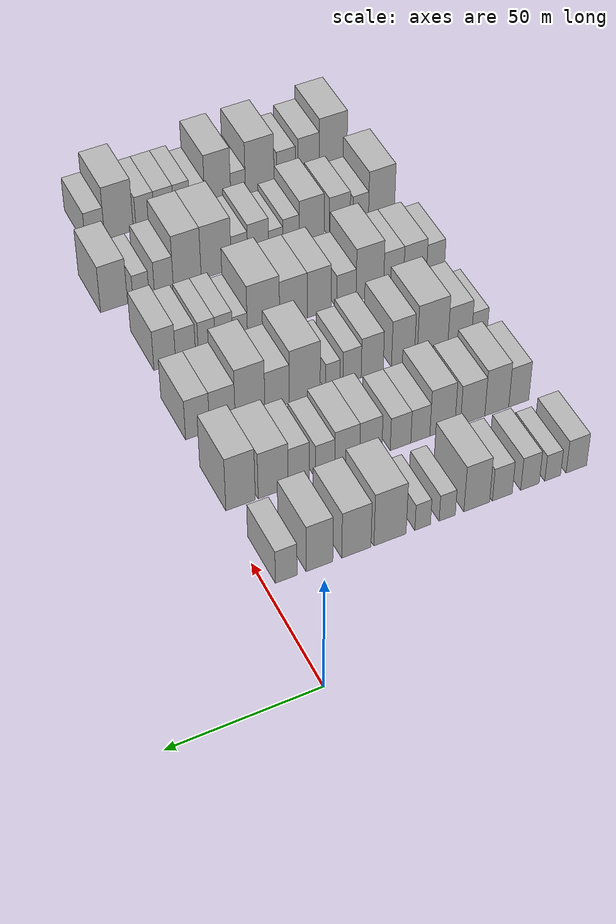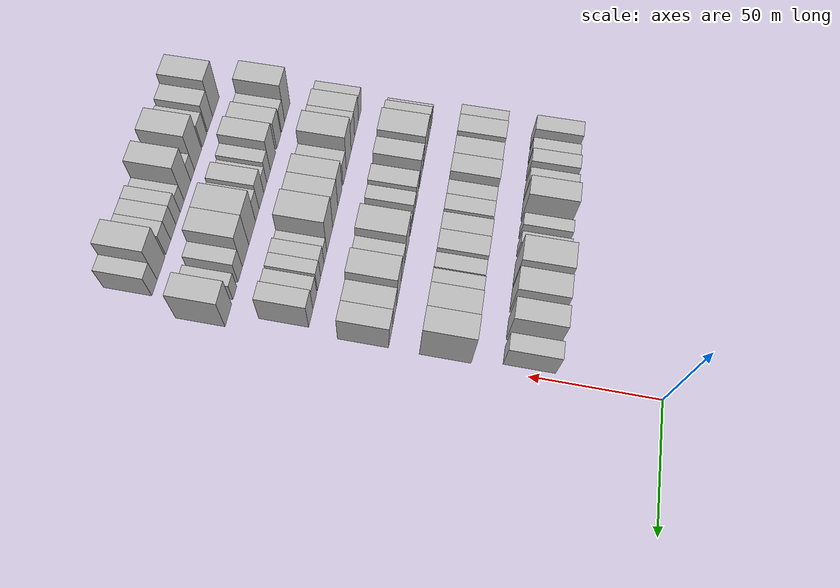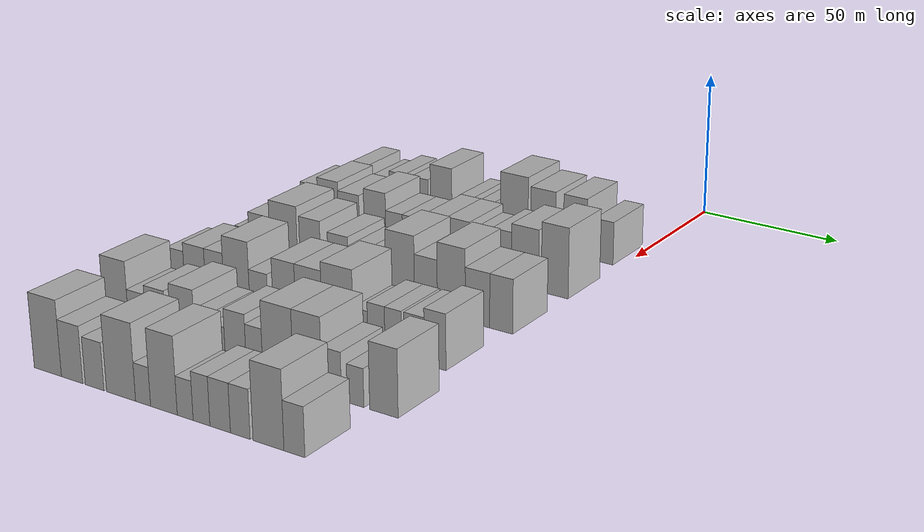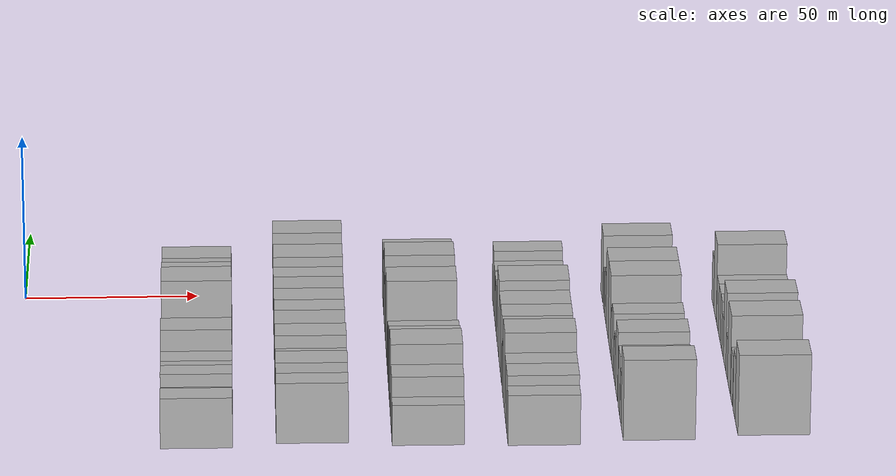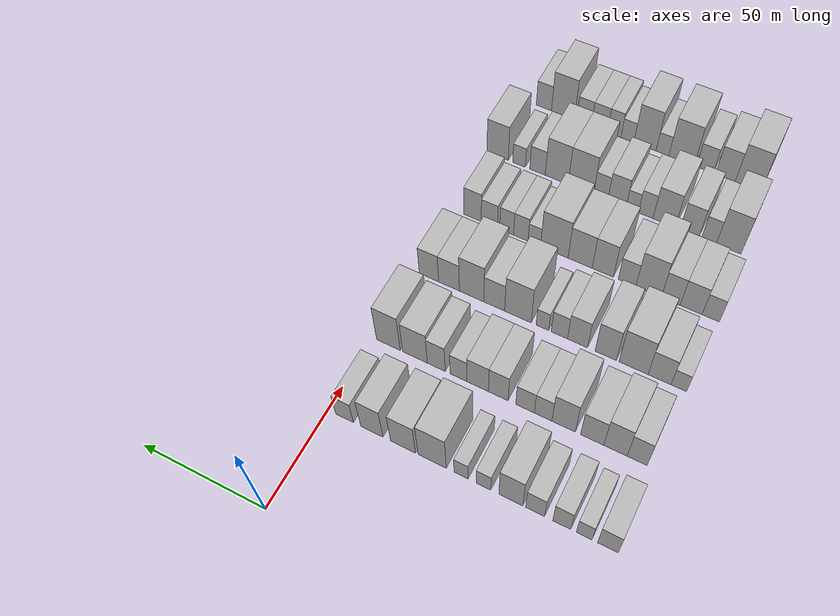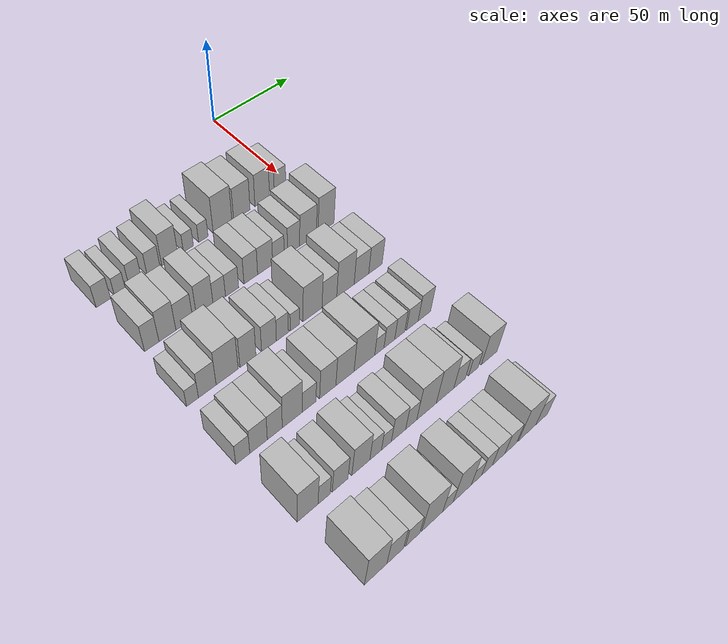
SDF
<sdf version="1.6">
 <world name="default">
  <model name="building_48">
   <static>1</static>
   <pose>50.0000 -106.9327 0 0.000000 0.000000 0.000000</pose>
   <link name="link">
    <pose>0 0 7.50 0 0 0</pose>
    <collision name="collision"><geometry><box><size>20.0000 7.3733 15.0000</size></box></geometry></collision>
    <visual name="visual">
     <cast_shadows>0</cast_shadows>
     <geometry><box><size>20.0000 7.3733 15.0000</size></box></geometry>
     <material>
      <script>
       <uri>model://HANNAS_wall/materials/scripts</uri>
       <uri>model://HANNAS_wall/materials/textures</uri>
       <name>vrc/HANNAS_wall</name>
      </script>
     </material>
    </visual>
   </link>
  </model>
  <model name="building_49">
   <static>1</static>
   <pose>50.0000 -98.4326 0 0.000000 0.000000 0.000000</pose>
   <link name="link">
    <pose>0 0 6.00 0 0 0</pose>
    <collision name="collision"><geometry><box><size>20.0000 5.6270 12.0000</size></box></geometry></collision>
    <visual name="visual">
     <cast_shadows>0</cast_shadows>
     <geometry><box><size>20.0000 5.6270 12.0000</size></box></geometry>
     <material>
      <script>
       <uri>model://HANNAS_wall/materials/scripts</uri>
       <uri>model://HANNAS_wall/materials/textures</uri>
       <name>vrc/HANNAS_wall</name>
      </script>
     </material>
    </visual>
   </link>
  </model>
  <model name="building_50">
   <static>1</static>
   <pose>50.0000 -90.3357 0 0.000000 0.000000 0.000000</pose>
   <link name="link">
    <pose>0 0 7.50 0 0 0</pose>
    <collision name="collision"><geometry><box><size>20.0000 6.5668 15.0000</size></box></geometry></collision>
    <visual name="visual">
     <cast_shadows>0</cast_shadows>
     <geometry><box><size>20.0000 6.5668 15.0000</size></box></geometry>
     <material>
      <script>
       <uri>model://HANNAS_wall/materials/scripts</uri>
       <uri>model://HANNAS_wall/materials/textures</uri>
       <name>vrc/HANNAS_wall</name>
      </script>
     </material>
    </visual>
   </link>
  </model>
  <model name="building_51">
   <static>1</static>
   <pose>50.0000 -80.5585 0 0.000000 0.000000 0.000000</pose>
   <link name="link">
    <pose>0 0 7.50 0 0 0</pose>
    <collision name="collision"><geometry><box><size>20.0000 6.9876 15.0000</size></box></geometry></collision>
    <visual name="visual">
     <cast_shadows>0</cast_shadows>
     <geometry><box><size>20.0000 6.9876 15.0000</size></box></geometry>
     <material>
      <script>
       <uri>model://HANNAS_wall/materials/scripts</uri>
       <uri>model://HANNAS_wall/materials/textures</uri>
       <name>vrc/HANNAS_wall</name>
      </script>
     </material>
    </visual>
   </link>
  </model>
  <model name="building_52">
   <static>1</static>
   <pose>50.0000 -71.5843 0 0.000000 0.000000 0.000000</pose>
   <link name="link">
    <pose>0 0 10.50 0 0 0</pose>
    <collision name="collision"><geometry><box><size>20.0000 8.9609 21.0000</size></box></geometry></collision>
    <visual name="visual">
     <cast_shadows>0</cast_shadows>
     <geometry><box><size>20.0000 8.9609 21.0000</size></box></geometry>
     <material>
      <script>
       <uri>model://HANNAS_wall/materials/scripts</uri>
       <uri>model://HANNAS_wall/materials/textures</uri>
       <name>vrc/HANNAS_wall</name>
      </script>
     </material>
    </visual>
   </link>
  </model>
  <model name="building_53">
   <static>1</static>
   <pose>50.0000 -61.3006 0 0.000000 0.000000 0.000000</pose>
   <link name="link">
    <pose>0 0 6.00 0 0 0</pose>
    <collision name="collision"><geometry><box><size>20.0000 5.6066 12.0000</size></box></geometry></collision>
    <visual name="visual">
     <cast_shadows>0</cast_shadows>
     <geometry><box><size>20.0000 5.6066 12.0000</size></box></geometry>
     <material>
      <script>
       <uri>model://HANNAS_wall/materials/scripts</uri>
       <uri>model://HANNAS_wall/materials/textures</uri>
       <name>vrc/HANNAS_wall</name>
      </script>
     </material>
    </visual>
   </link>
  </model>
  <model name="building_54">
   <static>1</static>
   <pose>50.0000 -52.8115 0 0.000000 0.000000 0.000000</pose>
   <link name="link">
    <pose>0 0 6.00 0 0 0</pose>
    <collision name="collision"><geometry><box><size>20.0000 5.3717 12.0000</size></box></geometry></collision>
    <visual name="visual">
     <cast_shadows>0</cast_shadows>
     <geometry><box><size>20.0000 5.3717 12.0000</size></box></geometry>
     <material>
      <script>
       <uri>model://HANNAS_wall/materials/scripts</uri>
       <uri>model://HANNAS_wall/materials/textures</uri>
       <name>vrc/HANNAS_wall</name>
      </script>
     </material>
    </visual>
   </link>
  </model>
  <model name="building_55">
   <static>1</static>
   <pose>50.0000 -41.6342 0 0.000000 0.000000 0.000000</pose>
   <link name="link">
    <pose>0 0 12.00 0 0 0</pose>
    <collision name="collision"><geometry><box><size>20.0000 10.9829 24.0000</size></box></geometry></collision>
    <visual name="visual">
     <cast_shadows>0</cast_shadows>
     <geometry><box><size>20.0000 10.9829 24.0000</size></box></geometry>
     <material>
      <script>
       <uri>model://HANNAS_wall/materials/scripts</uri>
       <uri>model://HANNAS_wall/materials/textures</uri>
       <name>vrc/HANNAS_wall</name>
      </script>
     </material>
    </visual>
   </link>
  </model>
  <model name="building_56">
   <static>1</static>
   <pose>50.0000 -30.2093 0 0.000000 0.000000 0.000000</pose>
   <link name="link">
    <pose>0 0 10.50 0 0 0</pose>
    <collision name="collision"><geometry><box><size>20.0000 9.8670 21.0000</size></box></geometry></collision>
    <visual name="visual">
     <cast_shadows>0</cast_shadows>
     <geometry><box><size>20.0000 9.8670 21.0000</size></box></geometry>
     <material>
      <script>
       <uri>model://HANNAS_wall/materials/scripts</uri>
       <uri>model://HANNAS_wall/materials/textures</uri>
       <name>vrc/HANNAS_wall</name>
      </script>
     </material>
    </visual>
   </link>
  </model>
  <model name="building_57">
   <static>1</static>
   <pose>50.0000 -17.8155 0 0.000000 0.000000 0.000000</pose>
   <link name="link">
    <pose>0 0 10.50 0 0 0</pose>
    <collision name="collision"><geometry><box><size>20.0000 8.9206 21.0000</size></box></geometry></collision>
    <visual name="visual">
     <cast_shadows>0</cast_shadows>
     <geometry><box><size>20.0000 8.9206 21.0000</size></box></geometry>
     <material>
      <script>
       <uri>model://HANNAS_wall/materials/scripts</uri>
       <uri>model://HANNAS_wall/materials/textures</uri>
       <name>vrc/HANNAS_wall</name>
      </script>
     </material>
    </visual>
   </link>
  </model>
  <model name="building_58">
   <static>1</static>
   <pose>50.0000 -6.7645 0 0.000000 0.000000 0.000000</pose>
   <link name="link">
    <pose>0 0 7.50 0 0 0</pose>
    <collision name="collision"><geometry><box><size>20.0000 7.1813 15.0000</size></box></geometry></collision>
    <visual name="visual">
     <cast_shadows>0</cast_shadows>
     <geometry><box><size>20.0000 7.1813 15.0000</size></box></geometry>
     <material>
      <script>
       <uri>model://HANNAS_wall/materials/scripts</uri>
       <uri>model://HANNAS_wall/materials/textures</uri>
       <name>vrc/HANNAS_wall</name>
      </script>
     </material>
    </visual>
   </link>
  </model>
  <model name="building_164">
   <static>1</static>
   <pose>82.0000 -104.2104 0 0.000000 0.000000 0.000000</pose>
   <link name="link">
    <pose>0 0 9.00 0 0 0</pose>
    <collision name="collision"><geometry><box><size>20.0000 7.3265 18.0000</size></box></geometry></collision>
    <visual name="visual">
     <cast_shadows>0</cast_shadows>
     <geometry><box><size>20.0000 7.3265 18.0000</size></box></geometry>
     <material>
      <script>
       <uri>model://HANNAS_wall/materials/scripts</uri>
       <uri>model://HANNAS_wall/materials/textures</uri>
       <name>vrc/HANNAS_wall</name>
      </script>
     </material>
    </visual>
   </link>
  </model>
  <model name="building_165">
   <static>1</static>
   <pose>82.0000 -96.1879 0 0.000000 0.000000 0.000000</pose>
   <link name="link">
    <pose>0 0 10.50 0 0 0</pose>
    <collision name="collision"><geometry><box><size>20.0000 8.7184 21.0000</size></box></geometry></collision>
    <visual name="visual">
     <cast_shadows>0</cast_shadows>
     <geometry><box><size>20.0000 8.7184 21.0000</size></box></geometry>
     <material>
      <script>
       <uri>model://HANNAS_wall/materials/scripts</uri>
       <uri>model://HANNAS_wall/materials/textures</uri>
       <name>vrc/HANNAS_wall</name>
      </script>
     </material>
    </visual>
   </link>
  </model>
  <model name="building_166">
   <static>1</static>
   <pose>82.0000 -87.4150 0 0.000000 0.000000 0.000000</pose>
   <link name="link">
    <pose>0 0 9.00 0 0 0</pose>
    <collision name="collision"><geometry><box><size>20.0000 8.8274 18.0000</size></box></geometry></collision>
    <visual name="visual">
     <cast_shadows>0</cast_shadows>
     <geometry><box><size>20.0000 8.8274 18.0000</size></box></geometry>
     <material>
      <script>
       <uri>model://HANNAS_wall/materials/scripts</uri>
       <uri>model://HANNAS_wall/materials/textures</uri>
       <name>vrc/HANNAS_wall</name>
      </script>
     </material>
    </visual>
   </link>
  </model>
  <model name="building_167">
   <static>1</static>
   <pose>82.0000 -76.5201 0 0.000000 0.000000 0.000000</pose>
   <link name="link">
    <pose>0 0 10.50 0 0 0</pose>
    <collision name="collision"><geometry><box><size>20.0000 8.9625 21.0000</size></box></geometry></collision>
    <visual name="visual">
     <cast_shadows>0</cast_shadows>
     <geometry><box><size>20.0000 8.9625 21.0000</size></box></geometry>
     <material>
      <script>
       <uri>model://HANNAS_wall/materials/scripts</uri>
       <uri>model://HANNAS_wall/materials/textures</uri>
       <name>vrc/HANNAS_wall</name>
      </script>
     </material>
    </visual>
   </link>
  </model>
  <model name="building_168">
   <static>1</static>
   <pose>82.0000 -68.6498 0 0.000000 0.000000 0.000000</pose>
   <link name="link">
    <pose>0 0 7.50 0 0 0</pose>
    <collision name="collision"><geometry><box><size>20.0000 6.7781 15.0000</size></box></geometry></collision>
    <visual name="visual">
     <cast_shadows>0</cast_shadows>
     <geometry><box><size>20.0000 6.7781 15.0000</size></box></geometry>
     <material>
      <script>
       <uri>model://HANNAS_wall/materials/scripts</uri>
       <uri>model://HANNAS_wall/materials/textures</uri>
       <name>vrc/HANNAS_wall</name>
      </script>
     </material>
    </visual>
   </link>
  </model>
  <model name="building_169">
   <static>1</static>
   <pose>82.0000 -61.6175 0 0.000000 0.000000 0.000000</pose>
   <link name="link">
    <pose>0 0 7.50 0 0 0</pose>
    <collision name="collision"><geometry><box><size>20.0000 7.2864 15.0000</size></box></geometry></collision>
    <visual name="visual">
     <cast_shadows>0</cast_shadows>
     <geometry><box><size>20.0000 7.2864 15.0000</size></box></geometry>
     <material>
      <script>
       <uri>model://HANNAS_wall/materials/scripts</uri>
       <uri>model://HANNAS_wall/materials/textures</uri>
       <name>vrc/HANNAS_wall</name>
      </script>
     </material>
    </visual>
   </link>
  </model>
  <model name="building_170">
   <static>1</static>
   <pose>82.0000 -51.0914 0 0.000000 0.000000 0.000000</pose>
   <link name="link">
    <pose>0 0 9.00 0 0 0</pose>
    <collision name="collision"><geometry><box><size>20.0000 7.7659 18.0000</size></box></geometry></collision>
    <visual name="visual">
     <cast_shadows>0</cast_shadows>
     <geometry><box><size>20.0000 7.7659 18.0000</size></box></geometry>
     <material>
      <script>
       <uri>model://HANNAS_wall/materials/scripts</uri>
       <uri>model://HANNAS_wall/materials/textures</uri>
       <name>vrc/HANNAS_wall</name>
      </script>
     </material>
    </visual>
   </link>
  </model>
  <model name="building_171">
   <static>1</static>
   <pose>82.0000 -42.8681 0 0.000000 0.000000 0.000000</pose>
   <link name="link">
    <pose>0 0 9.00 0 0 0</pose>
    <collision name="collision"><geometry><box><size>20.0000 8.6808 18.0000</size></box></geometry></collision>
    <visual name="visual">
     <cast_shadows>0</cast_shadows>
     <geometry><box><size>20.0000 8.6808 18.0000</size></box></geometry>
     <material>
      <script>
       <uri>model://HANNAS_wall/materials/scripts</uri>
       <uri>model://HANNAS_wall/materials/textures</uri>
       <name>vrc/HANNAS_wall</name>
      </script>
     </material>
    </visual>
   </link>
  </model>
  <model name="building_172">
   <static>1</static>
   <pose>82.0000 -35.1683 0 0.000000 0.000000 0.000000</pose>
   <link name="link">
    <pose>0 0 7.50 0 0 0</pose>
    <collision name="collision"><geometry><box><size>20.0000 6.7187 15.0000</size></box></geometry></collision>
    <visual name="visual">
     <cast_shadows>0</cast_shadows>
     <geometry><box><size>20.0000 6.7187 15.0000</size></box></geometry>
     <material>
      <script>
       <uri>model://HANNAS_wall/materials/scripts</uri>
       <uri>model://HANNAS_wall/materials/textures</uri>
       <name>vrc/HANNAS_wall</name>
      </script>
     </material>
    </visual>
   </link>
  </model>
  <model name="building_173">
   <static>1</static>
   <pose>82.0000 -26.1395 0 0.000000 0.000000 0.000000</pose>
   <link name="link">
    <pose>0 0 9.00 0 0 0</pose>
    <collision name="collision"><geometry><box><size>20.0000 7.3390 18.0000</size></box></geometry></collision>
    <visual name="visual">
     <cast_shadows>0</cast_shadows>
     <geometry><box><size>20.0000 7.3390 18.0000</size></box></geometry>
     <material>
      <script>
       <uri>model://HANNAS_wall/materials/scripts</uri>
       <uri>model://HANNAS_wall/materials/textures</uri>
       <name>vrc/HANNAS_wall</name>
      </script>
     </material>
    </visual>
   </link>
  </model>
  <model name="building_174">
   <static>1</static>
   <pose>82.0000 -17.3554 0 0.000000 0.000000 0.000000</pose>
   <link name="link">
    <pose>0 0 10.50 0 0 0</pose>
    <collision name="collision"><geometry><box><size>20.0000 10.2293 21.0000</size></box></geometry></collision>
    <visual name="visual">
     <cast_shadows>0</cast_shadows>
     <geometry><box><size>20.0000 10.2293 21.0000</size></box></geometry>
     <material>
      <script>
       <uri>model://HANNAS_wall/materials/scripts</uri>
       <uri>model://HANNAS_wall/materials/textures</uri>
       <name>vrc/HANNAS_wall</name>
      </script>
     </material>
    </visual>
   </link>
  </model>
  <model name="building_175">
   <static>1</static>
   <pose>82.0000 -6.2655 0 0.000000 0.000000 0.000000</pose>
   <link name="link">
    <pose>0 0 12.00 0 0 0</pose>
    <collision name="collision"><geometry><box><size>20.0000 9.9505 24.0000</size></box></geometry></collision>
    <visual name="visual">
     <cast_shadows>0</cast_shadows>
     <geometry><box><size>20.0000 9.9505 24.0000</size></box></geometry>
     <material>
      <script>
       <uri>model://HANNAS_wall/materials/scripts</uri>
       <uri>model://HANNAS_wall/materials/textures</uri>
       <name>vrc/HANNAS_wall</name>
      </script>
     </material>
    </visual>
   </link>
  </model>
  <model name="building_286">
   <static>1</static>
   <pose>114.0000 -107.2323 0 0.000000 0.000000 0.000000</pose>
   <link name="link">
    <pose>0 0 6.00 0 0 0</pose>
    <collision name="collision"><geometry><box><size>20.0000 5.8967 12.0000</size></box></geometry></collision>
    <visual name="visual">
     <cast_shadows>0</cast_shadows>
     <geometry><box><size>20.0000 5.8967 12.0000</size></box></geometry>
     <material>
      <script>
       <uri>model://HANNAS_wall/materials/scripts</uri>
       <uri>model://HANNAS_wall/materials/textures</uri>
       <name>vrc/HANNAS_wall</name>
      </script>
     </material>
    </visual>
   </link>
  </model>
  <model name="building_287">
   <static>1</static>
   <pose>114.0000 -99.8541 0 0.000000 0.000000 0.000000</pose>
   <link name="link">
    <pose>0 0 9.00 0 0 0</pose>
    <collision name="collision"><geometry><box><size>20.0000 8.8598 18.0000</size></box></geometry></collision>
    <visual name="visual">
     <cast_shadows>0</cast_shadows>
     <geometry><box><size>20.0000 8.8598 18.0000</size></box></geometry>
     <material>
      <script>
       <uri>model://HANNAS_wall/materials/scripts</uri>
       <uri>model://HANNAS_wall/materials/textures</uri>
       <name>vrc/HANNAS_wall</name>
      </script>
     </material>
    </visual>
   </link>
  </model>
  <model name="building_288">
   <static>1</static>
   <pose>114.0000 -89.7545 0 0.000000 0.000000 0.000000</pose>
   <link name="link">
    <pose>0 0 12.00 0 0 0</pose>
    <collision name="collision"><geometry><box><size>20.0000 11.3393 24.0000</size></box></geometry></collision>
    <visual name="visual">
     <cast_shadows>0</cast_shadows>
     <geometry><box><size>20.0000 11.3393 24.0000</size></box></geometry>
     <material>
      <script>
       <uri>model://HANNAS_wall/materials/scripts</uri>
       <uri>model://HANNAS_wall/materials/textures</uri>
       <name>vrc/HANNAS_wall</name>
      </script>
     </material>
    </visual>
   </link>
  </model>
  <model name="building_289">
   <static>1</static>
   <pose>114.0000 -78.8769 0 0.000000 0.000000 0.000000</pose>
   <link name="link">
    <pose>0 0 10.50 0 0 0</pose>
    <collision name="collision"><geometry><box><size>20.0000 8.4158 21.0000</size></box></geometry></collision>
    <visual name="visual">
     <cast_shadows>0</cast_shadows>
     <geometry><box><size>20.0000 8.4158 21.0000</size></box></geometry>
     <material>
      <script>
       <uri>model://HANNAS_wall/materials/scripts</uri>
       <uri>model://HANNAS_wall/materials/textures</uri>
       <name>vrc/HANNAS_wall</name>
      </script>
     </material>
    </visual>
   </link>
  </model>
  <model name="building_290">
   <static>1</static>
   <pose>114.0000 -67.6635 0 0.000000 0.000000 0.000000</pose>
   <link name="link">
    <pose>0 0 9.00 0 0 0</pose>
    <collision name="collision"><geometry><box><size>20.0000 8.0111 18.0000</size></box></geometry></collision>
    <visual name="visual">
     <cast_shadows>0</cast_shadows>
     <geometry><box><size>20.0000 8.0111 18.0000</size></box></geometry>
     <material>
      <script>
       <uri>model://HANNAS_wall/materials/scripts</uri>
       <uri>model://HANNAS_wall/materials/textures</uri>
       <name>vrc/HANNAS_wall</name>
      </script>
     </material>
    </visual>
   </link>
  </model>
  <model name="building_291">
   <static>1</static>
   <pose>114.0000 -60.3493 0 0.000000 0.000000 0.000000</pose>
   <link name="link">
    <pose>0 0 7.50 0 0 0</pose>
    <collision name="collision"><geometry><box><size>20.0000 6.6172 15.0000</size></box></geometry></collision>
    <visual name="visual">
     <cast_shadows>0</cast_shadows>
     <geometry><box><size>20.0000 6.6172 15.0000</size></box></geometry>
     <material>
      <script>
       <uri>model://HANNAS_wall/materials/scripts</uri>
       <uri>model://HANNAS_wall/materials/textures</uri>
       <name>vrc/HANNAS_wall</name>
      </script>
     </material>
    </visual>
   </link>
  </model>
  <model name="building_292">
   <static>1</static>
   <pose>114.0000 -53.4768 0 0.000000 0.000000 0.000000</pose>
   <link name="link">
    <pose>0 0 6.00 0 0 0</pose>
    <collision name="collision"><geometry><box><size>20.0000 5.1278 12.0000</size></box></geometry></collision>
    <visual name="visual">
     <cast_shadows>0</cast_shadows>
     <geometry><box><size>20.0000 5.1278 12.0000</size></box></geometry>
     <material>
      <script>
       <uri>model://HANNAS_wall/materials/scripts</uri>
       <uri>model://HANNAS_wall/materials/textures</uri>
       <name>vrc/HANNAS_wall</name>
      </script>
     </material>
    </visual>
   </link>
  </model>
  <model name="building_293">
   <static>1</static>
   <pose>114.0000 -43.4292 0 0.000000 0.000000 0.000000</pose>
   <link name="link">
    <pose>0 0 12.00 0 0 0</pose>
    <collision name="collision"><geometry><box><size>20.0000 10.9676 24.0000</size></box></geometry></collision>
    <visual name="visual">
     <cast_shadows>0</cast_shadows>
     <geometry><box><size>20.0000 10.9676 24.0000</size></box></geometry>
     <material>
      <script>
       <uri>model://HANNAS_wall/materials/scripts</uri>
       <uri>model://HANNAS_wall/materials/textures</uri>
       <name>vrc/HANNAS_wall</name>
      </script>
     </material>
    </visual>
   </link>
  </model>
  <model name="building_294">
   <static>1</static>
   <pose>114.0000 -33.6324 0 0.000000 0.000000 0.000000</pose>
   <link name="link">
    <pose>0 0 9.00 0 0 0</pose>
    <collision name="collision"><geometry><box><size>20.0000 8.6259 18.0000</size></box></geometry></collision>
    <visual name="visual">
     <cast_shadows>0</cast_shadows>
     <geometry><box><size>20.0000 8.6259 18.0000</size></box></geometry>
     <material>
      <script>
       <uri>model://HANNAS_wall/materials/scripts</uri>
       <uri>model://HANNAS_wall/materials/textures</uri>
       <name>vrc/HANNAS_wall</name>
      </script>
     </material>
    </visual>
   </link>
  </model>
  <model name="building_295">
   <static>1</static>
   <pose>114.0000 -24.1187 0 0.000000 0.000000 0.000000</pose>
   <link name="link">
    <pose>0 0 12.00 0 0 0</pose>
    <collision name="collision"><geometry><box><size>20.0000 10.4016 24.0000</size></box></geometry></collision>
    <visual name="visual">
     <cast_shadows>0</cast_shadows>
     <geometry><box><size>20.0000 10.4016 24.0000</size></box></geometry>
     <material>
      <script>
       <uri>model://HANNAS_wall/materials/scripts</uri>
       <uri>model://HANNAS_wall/materials/textures</uri>
       <name>vrc/HANNAS_wall</name>
      </script>
     </material>
    </visual>
   </link>
  </model>
  <model name="building_296">
   <static>1</static>
   <pose>114.0000 -14.4616 0 0.000000 0.000000 0.000000</pose>
   <link name="link">
    <pose>0 0 9.00 0 0 0</pose>
    <collision name="collision"><geometry><box><size>20.0000 8.9125 18.0000</size></box></geometry></collision>
    <visual name="visual">
     <cast_shadows>0</cast_shadows>
     <geometry><box><size>20.0000 8.9125 18.0000</size></box></geometry>
     <material>
      <script>
       <uri>model://HANNAS_wall/materials/scripts</uri>
       <uri>model://HANNAS_wall/materials/textures</uri>
       <name>vrc/HANNAS_wall</name>
      </script>
     </material>
    </visual>
   </link>
  </model>
  <model name="building_297">
   <static>1</static>
   <pose>114.0000 -5.8392 0 0.000000 0.000000 0.000000</pose>
   <link name="link">
    <pose>0 0 9.00 0 0 0</pose>
    <collision name="collision"><geometry><box><size>20.0000 8.3323 18.0000</size></box></geometry></collision>
    <visual name="visual">
     <cast_shadows>0</cast_shadows>
     <geometry><box><size>20.0000 8.3323 18.0000</size></box></geometry>
     <material>
      <script>
       <uri>model://HANNAS_wall/materials/scripts</uri>
       <uri>model://HANNAS_wall/materials/textures</uri>
       <name>vrc/HANNAS_wall</name>
      </script>
     </material>
    </visual>
   </link>
  </model>
  <model name="building_407">
   <static>1</static>
   <pose>146.0000 -107.6250 0 0.000000 0.000000 0.000000</pose>
   <link name="link">
    <pose>0 0 7.50 0 0 0</pose>
    <collision name="collision"><geometry><box><size>20.0000 6.8381 15.0000</size></box></geometry></collision>
    <visual name="visual">
     <cast_shadows>0</cast_shadows>
     <geometry><box><size>20.0000 6.8381 15.0000</size></box></geometry>
     <material>
      <script>
       <uri>model://HANNAS_wall/materials/scripts</uri>
       <uri>model://HANNAS_wall/materials/textures</uri>
       <name>vrc/HANNAS_wall</name>
      </script>
     </material>
    </visual>
   </link>
  </model>
  <model name="building_408">
   <static>1</static>
   <pose>146.0000 -99.8590 0 0.000000 0.000000 0.000000</pose>
   <link name="link">
    <pose>0 0 9.00 0 0 0</pose>
    <collision name="collision"><geometry><box><size>20.0000 8.6939 18.0000</size></box></geometry></collision>
    <visual name="visual">
     <cast_shadows>0</cast_shadows>
     <geometry><box><size>20.0000 8.6939 18.0000</size></box></geometry>
     <material>
      <script>
       <uri>model://HANNAS_wall/materials/scripts</uri>
       <uri>model://HANNAS_wall/materials/textures</uri>
       <name>vrc/HANNAS_wall</name>
      </script>
     </material>
    </visual>
   </link>
  </model>
  <model name="building_409">
   <static>1</static>
   <pose>146.0000 -91.7360 0 0.000000 0.000000 0.000000</pose>
   <link name="link">
    <pose>0 0 9.00 0 0 0</pose>
    <collision name="collision"><geometry><box><size>20.0000 7.5520 18.0000</size></box></geometry></collision>
    <visual name="visual">
     <cast_shadows>0</cast_shadows>
     <geometry><box><size>20.0000 7.5520 18.0000</size></box></geometry>
     <material>
      <script>
       <uri>model://HANNAS_wall/materials/scripts</uri>
       <uri>model://HANNAS_wall/materials/textures</uri>
       <name>vrc/HANNAS_wall</name>
      </script>
     </material>
    </visual>
   </link>
  </model>
  <model name="building_410">
   <static>1</static>
   <pose>146.0000 -82.7983 0 0.000000 0.000000 0.000000</pose>
   <link name="link">
    <pose>0 0 12.00 0 0 0</pose>
    <collision name="collision"><geometry><box><size>20.0000 10.3234 24.0000</size></box></geometry></collision>
    <visual name="visual">
     <cast_shadows>0</cast_shadows>
     <geometry><box><size>20.0000 10.3234 24.0000</size></box></geometry>
     <material>
      <script>
       <uri>model://HANNAS_wall/materials/scripts</uri>
       <uri>model://HANNAS_wall/materials/textures</uri>
       <name>vrc/HANNAS_wall</name>
      </script>
     </material>
    </visual>
   </link>
  </model>
  <model name="building_411">
   <static>1</static>
   <pose>146.0000 -74.0247 0 0.000000 0.000000 0.000000</pose>
   <link name="link">
    <pose>0 0 7.50 0 0 0</pose>
    <collision name="collision"><geometry><box><size>20.0000 7.2238 15.0000</size></box></geometry></collision>
    <visual name="visual">
     <cast_shadows>0</cast_shadows>
     <geometry><box><size>20.0000 7.2238 15.0000</size></box></geometry>
     <material>
      <script>
       <uri>model://HANNAS_wall/materials/scripts</uri>
       <uri>model://HANNAS_wall/materials/textures</uri>
       <name>vrc/HANNAS_wall</name>
      </script>
     </material>
    </visual>
   </link>
  </model>
  <model name="building_412">
   <static>1</static>
   <pose>146.0000 -64.0177 0 0.000000 0.000000 0.000000</pose>
   <link name="link">
    <pose>0 0 10.50 0 0 0</pose>
    <collision name="collision"><geometry><box><size>20.0000 8.7901 21.0000</size></box></geometry></collision>
    <visual name="visual">
     <cast_shadows>0</cast_shadows>
     <geometry><box><size>20.0000 8.7901 21.0000</size></box></geometry>
     <material>
      <script>
       <uri>model://HANNAS_wall/materials/scripts</uri>
       <uri>model://HANNAS_wall/materials/textures</uri>
       <name>vrc/HANNAS_wall</name>
      </script>
     </material>
    </visual>
   </link>
  </model>
  <model name="building_413">
   <static>1</static>
   <pose>146.0000 -54.5654 0 0.000000 0.000000 0.000000</pose>
   <link name="link">
    <pose>0 0 10.50 0 0 0</pose>
    <collision name="collision"><geometry><box><size>20.0000 10.1145 21.0000</size></box></geometry></collision>
    <visual name="visual">
     <cast_shadows>0</cast_shadows>
     <geometry><box><size>20.0000 10.1145 21.0000</size></box></geometry>
     <material>
      <script>
       <uri>model://HANNAS_wall/materials/scripts</uri>
       <uri>model://HANNAS_wall/materials/textures</uri>
       <name>vrc/HANNAS_wall</name>
      </script>
     </material>
    </visual>
   </link>
  </model>
  <model name="building_414">
   <static>1</static>
   <pose>146.0000 -43.6492 0 0.000000 0.000000 0.000000</pose>
   <link name="link">
    <pose>0 0 12.00 0 0 0</pose>
    <collision name="collision"><geometry><box><size>20.0000 11.7178 24.0000</size></box></geometry></collision>
    <visual name="visual">
     <cast_shadows>0</cast_shadows>
     <geometry><box><size>20.0000 11.7178 24.0000</size></box></geometry>
     <material>
      <script>
       <uri>model://HANNAS_wall/materials/scripts</uri>
       <uri>model://HANNAS_wall/materials/textures</uri>
       <name>vrc/HANNAS_wall</name>
      </script>
     </material>
    </visual>
   </link>
  </model>
  <model name="building_415">
   <static>1</static>
   <pose>146.0000 -35.1220 0 0.000000 0.000000 0.000000</pose>
   <link name="link">
    <pose>0 0 6.00 0 0 0</pose>
    <collision name="collision"><geometry><box><size>20.0000 5.3366 12.0000</size></box></geometry></collision>
    <visual name="visual">
     <cast_shadows>0</cast_shadows>
     <geometry><box><size>20.0000 5.3366 12.0000</size></box></geometry>
     <material>
      <script>
       <uri>model://HANNAS_wall/materials/scripts</uri>
       <uri>model://HANNAS_wall/materials/textures</uri>
       <name>vrc/HANNAS_wall</name>
      </script>
     </material>
    </visual>
   </link>
  </model>
  <model name="building_416">
   <static>1</static>
   <pose>146.0000 -29.2999 0 0.000000 0.000000 0.000000</pose>
   <link name="link">
    <pose>0 0 7.50 0 0 0</pose>
    <collision name="collision"><geometry><box><size>20.0000 6.3077 15.0000</size></box></geometry></collision>
    <visual name="visual">
     <cast_shadows>0</cast_shadows>
     <geometry><box><size>20.0000 6.3077 15.0000</size></box></geometry>
     <material>
      <script>
       <uri>model://HANNAS_wall/materials/scripts</uri>
       <uri>model://HANNAS_wall/materials/textures</uri>
       <name>vrc/HANNAS_wall</name>
      </script>
     </material>
    </visual>
   </link>
  </model>
  <model name="building_417">
   <static>1</static>
   <pose>146.0000 -23.1371 0 0.000000 0.000000 0.000000</pose>
   <link name="link">
    <pose>0 0 7.50 0 0 0</pose>
    <collision name="collision"><geometry><box><size>20.0000 6.0180 15.0000</size></box></geometry></collision>
    <visual name="visual">
     <cast_shadows>0</cast_shadows>
     <geometry><box><size>20.0000 6.0180 15.0000</size></box></geometry>
     <material>
      <script>
       <uri>model://HANNAS_wall/materials/scripts</uri>
       <uri>model://HANNAS_wall/materials/textures</uri>
       <name>vrc/HANNAS_wall</name>
      </script>
     </material>
    </visual>
   </link>
  </model>
  <model name="building_418">
   <static>1</static>
   <pose>146.0000 -15.5736 0 0.000000 0.000000 0.000000</pose>
   <link name="link">
    <pose>0 0 7.50 0 0 0</pose>
    <collision name="collision"><geometry><box><size>20.0000 7.1090 15.0000</size></box></geometry></collision>
    <visual name="visual">
     <cast_shadows>0</cast_shadows>
     <geometry><box><size>20.0000 7.1090 15.0000</size></box></geometry>
     <material>
      <script>
       <uri>model://HANNAS_wall/materials/scripts</uri>
       <uri>model://HANNAS_wall/materials/textures</uri>
       <name>vrc/HANNAS_wall</name>
      </script>
     </material>
    </visual>
   </link>
  </model>
  <model name="building_419">
   <static>1</static>
   <pose>146.0000 -8.1802 0 0.000000 0.000000 0.000000</pose>
   <link name="link">
    <pose>0 0 9.00 0 0 0</pose>
    <collision name="collision"><geometry><box><size>20.0000 7.6778 18.0000</size></box></geometry></collision>
    <visual name="visual">
     <cast_shadows>0</cast_shadows>
     <geometry><box><size>20.0000 7.6778 18.0000</size></box></geometry>
     <material>
      <script>
       <uri>model://HANNAS_wall/materials/scripts</uri>
       <uri>model://HANNAS_wall/materials/textures</uri>
       <name>vrc/HANNAS_wall</name>
      </script>
     </material>
    </visual>
   </link>
  </model>
  <model name="building_532">
   <static>1</static>
   <pose>178.0000 -103.3314 0 0.000000 0.000000 0.000000</pose>
   <link name="link">
    <pose>0 0 12.00 0 0 0</pose>
    <collision name="collision"><geometry><box><size>20.0000 10.0949 24.0000</size></box></geometry></collision>
    <visual name="visual">
     <cast_shadows>0</cast_shadows>
     <geometry><box><size>20.0000 10.0949 24.0000</size></box></geometry>
     <material>
      <script>
       <uri>model://HANNAS_wall/materials/scripts</uri>
       <uri>model://HANNAS_wall/materials/textures</uri>
       <name>vrc/HANNAS_wall</name>
      </script>
     </material>
    </visual>
   </link>
  </model>
  <model name="building_533">
   <static>1</static>
   <pose>178.0000 -95.2468 0 0.000000 0.000000 0.000000</pose>
   <link name="link">
    <pose>0 0 7.50 0 0 0</pose>
    <collision name="collision"><geometry><box><size>20.0000 6.0743 15.0000</size></box></geometry></collision>
    <visual name="visual">
     <cast_shadows>0</cast_shadows>
     <geometry><box><size>20.0000 6.0743 15.0000</size></box></geometry>
     <material>
      <script>
       <uri>model://HANNAS_wall/materials/scripts</uri>
       <uri>model://HANNAS_wall/materials/textures</uri>
       <name>vrc/HANNAS_wall</name>
      </script>
     </material>
    </visual>
   </link>
  </model>
  <model name="building_534">
   <static>1</static>
   <pose>178.0000 -87.2287 0 0.000000 0.000000 0.000000</pose>
   <link name="link">
    <pose>0 0 9.00 0 0 0</pose>
    <collision name="collision"><geometry><box><size>20.0000 7.9620 18.0000</size></box></geometry></collision>
    <visual name="visual">
     <cast_shadows>0</cast_shadows>
     <geometry><box><size>20.0000 7.9620 18.0000</size></box></geometry>
     <material>
      <script>
       <uri>model://HANNAS_wall/materials/scripts</uri>
       <uri>model://HANNAS_wall/materials/textures</uri>
       <name>vrc/HANNAS_wall</name>
      </script>
     </material>
    </visual>
   </link>
  </model>
  <model name="building_535">
   <static>1</static>
   <pose>178.0000 -76.5608 0 0.000000 0.000000 0.000000</pose>
   <link name="link">
    <pose>0 0 10.50 0 0 0</pose>
    <collision name="collision"><geometry><box><size>20.0000 9.3739 21.0000</size></box></geometry></collision>
    <visual name="visual">
     <cast_shadows>0</cast_shadows>
     <geometry><box><size>20.0000 9.3739 21.0000</size></box></geometry>
     <material>
      <script>
       <uri>model://HANNAS_wall/materials/scripts</uri>
       <uri>model://HANNAS_wall/materials/textures</uri>
       <name>vrc/HANNAS_wall</name>
      </script>
     </material>
    </visual>
   </link>
  </model>
  <model name="building_536">
   <static>1</static>
   <pose>178.0000 -68.7751 0 0.000000 0.000000 0.000000</pose>
   <link name="link">
    <pose>0 0 7.50 0 0 0</pose>
    <collision name="collision"><geometry><box><size>20.0000 6.1975 15.0000</size></box></geometry></collision>
    <visual name="visual">
     <cast_shadows>0</cast_shadows>
     <geometry><box><size>20.0000 6.1975 15.0000</size></box></geometry>
     <material>
      <script>
       <uri>model://HANNAS_wall/materials/scripts</uri>
       <uri>model://HANNAS_wall/materials/textures</uri>
       <name>vrc/HANNAS_wall</name>
      </script>
     </material>
    </visual>
   </link>
  </model>
  <model name="building_537">
   <static>1</static>
   <pose>178.0000 -63.0310 0 0.000000 0.000000 0.000000</pose>
   <link name="link">
    <pose>0 0 6.00 0 0 0</pose>
    <collision name="collision"><geometry><box><size>20.0000 5.2905 12.0000</size></box></geometry></collision>
    <visual name="visual">
     <cast_shadows>0</cast_shadows>
     <geometry><box><size>20.0000 5.2905 12.0000</size></box></geometry>
     <material>
      <script>
       <uri>model://HANNAS_wall/materials/scripts</uri>
       <uri>model://HANNAS_wall/materials/textures</uri>
       <name>vrc/HANNAS_wall</name>
      </script>
     </material>
    </visual>
   </link>
  </model>
  <model name="building_538">
   <static>1</static>
   <pose>178.0000 -56.4521 0 0.000000 0.000000 0.000000</pose>
   <link name="link">
    <pose>0 0 9.00 0 0 0</pose>
    <collision name="collision"><geometry><box><size>20.0000 7.8673 18.0000</size></box></geometry></collision>
    <visual name="visual">
     <cast_shadows>0</cast_shadows>
     <geometry><box><size>20.0000 7.8673 18.0000</size></box></geometry>
     <material>
      <script>
       <uri>model://HANNAS_wall/materials/scripts</uri>
       <uri>model://HANNAS_wall/materials/textures</uri>
       <name>vrc/HANNAS_wall</name>
      </script>
     </material>
    </visual>
   </link>
  </model>
  <model name="building_539">
   <static>1</static>
   <pose>178.0000 -49.4395 0 0.000000 0.000000 0.000000</pose>
   <link name="link">
    <pose>0 0 7.50 0 0 0</pose>
    <collision name="collision"><geometry><box><size>20.0000 6.1579 15.0000</size></box></geometry></collision>
    <visual name="visual">
     <cast_shadows>0</cast_shadows>
     <geometry><box><size>20.0000 6.1579 15.0000</size></box></geometry>
     <material>
      <script>
       <uri>model://HANNAS_wall/materials/scripts</uri>
       <uri>model://HANNAS_wall/materials/textures</uri>
       <name>vrc/HANNAS_wall</name>
      </script>
     </material>
    </visual>
   </link>
  </model>
  <model name="building_540">
   <static>1</static>
   <pose>178.0000 -40.7744 0 0.000000 0.000000 0.000000</pose>
   <link name="link">
    <pose>0 0 12.00 0 0 0</pose>
    <collision name="collision"><geometry><box><size>20.0000 11.1724 24.0000</size></box></geometry></collision>
    <visual name="visual">
     <cast_shadows>0</cast_shadows>
     <geometry><box><size>20.0000 11.1724 24.0000</size></box></geometry>
     <material>
      <script>
       <uri>model://HANNAS_wall/materials/scripts</uri>
       <uri>model://HANNAS_wall/materials/textures</uri>
       <name>vrc/HANNAS_wall</name>
      </script>
     </material>
    </visual>
   </link>
  </model>
  <model name="building_541">
   <static>1</static>
   <pose>178.0000 -30.0668 0 0.000000 0.000000 0.000000</pose>
   <link name="link">
    <pose>0 0 12.00 0 0 0</pose>
    <collision name="collision"><geometry><box><size>20.0000 10.2427 24.0000</size></box></geometry></collision>
    <visual name="visual">
     <cast_shadows>0</cast_shadows>
     <geometry><box><size>20.0000 10.2427 24.0000</size></box></geometry>
     <material>
      <script>
       <uri>model://HANNAS_wall/materials/scripts</uri>
       <uri>model://HANNAS_wall/materials/textures</uri>
       <name>vrc/HANNAS_wall</name>
      </script>
     </material>
    </visual>
   </link>
  </model>
  <model name="building_542">
   <static>1</static>
   <pose>178.0000 -21.4969 0 0.000000 0.000000 0.000000</pose>
   <link name="link">
    <pose>0 0 7.50 0 0 0</pose>
    <collision name="collision"><geometry><box><size>20.0000 6.8972 15.0000</size></box></geometry></collision>
    <visual name="visual">
     <cast_shadows>0</cast_shadows>
     <geometry><box><size>20.0000 6.8972 15.0000</size></box></geometry>
     <material>
      <script>
       <uri>model://HANNAS_wall/materials/scripts</uri>
       <uri>model://HANNAS_wall/materials/textures</uri>
       <name>vrc/HANNAS_wall</name>
      </script>
     </material>
    </visual>
   </link>
  </model>
  <model name="building_543">
   <static>1</static>
   <pose>178.0000 -13.1566 0 0.000000 0.000000 0.000000</pose>
   <link name="link">
    <pose>0 0 6.00 0 0 0</pose>
    <collision name="collision"><geometry><box><size>20.0000 5.7835 12.0000</size></box></geometry></collision>
    <visual name="visual">
     <cast_shadows>0</cast_shadows>
     <geometry><box><size>20.0000 5.7835 12.0000</size></box></geometry>
     <material>
      <script>
       <uri>model://HANNAS_wall/materials/scripts</uri>
       <uri>model://HANNAS_wall/materials/textures</uri>
       <name>vrc/HANNAS_wall</name>
      </script>
     </material>
    </visual>
   </link>
  </model>
  <model name="building_544">
   <static>1</static>
   <pose>178.0000 -3.4073 0 0.000000 0.000000 0.000000</pose>
   <link name="link">
    <pose>0 0 10.50 0 0 0</pose>
    <collision name="collision"><geometry><box><size>20.0000 9.7151 21.0000</size></box></geometry></collision>
    <visual name="visual">
     <cast_shadows>0</cast_shadows>
     <geometry><box><size>20.0000 9.7151 21.0000</size></box></geometry>
     <material>
      <script>
       <uri>model://HANNAS_wall/materials/scripts</uri>
       <uri>model://HANNAS_wall/materials/textures</uri>
       <name>vrc/HANNAS_wall</name>
      </script>
     </material>
    </visual>
   </link>
  </model>
  <model name="building_652">
   <static>1</static>
   <pose>210.0000 -100.3204 0 0.000000 0.000000 0.000000</pose>
   <link name="link">
    <pose>0 0 12.00 0 0 0</pose>
    <collision name="collision"><geometry><box><size>20.0000 10.9014 24.0000</size></box></geometry></collision>
    <visual name="visual">
     <cast_shadows>0</cast_shadows>
     <geometry><box><size>20.0000 10.9014 24.0000</size></box></geometry>
     <material>
      <script>
       <uri>model://HANNAS_wall/materials/scripts</uri>
       <uri>model://HANNAS_wall/materials/textures</uri>
       <name>vrc/HANNAS_wall</name>
      </script>
     </material>
    </visual>
   </link>
  </model>
  <model name="building_653">
   <static>1</static>
   <pose>210.0000 -90.6763 0 0.000000 0.000000 0.000000</pose>
   <link name="link">
    <pose>0 0 9.00 0 0 0</pose>
    <collision name="collision"><geometry><box><size>20.0000 8.3868 18.0000</size></box></geometry></collision>
    <visual name="visual">
     <cast_shadows>0</cast_shadows>
     <geometry><box><size>20.0000 8.3868 18.0000</size></box></geometry>
     <material>
      <script>
       <uri>model://HANNAS_wall/materials/scripts</uri>
       <uri>model://HANNAS_wall/materials/textures</uri>
       <name>vrc/HANNAS_wall</name>
      </script>
     </material>
    </visual>
   </link>
  </model>
  <model name="building_654">
   <static>1</static>
   <pose>210.0000 -81.8474 0 0.000000 0.000000 0.000000</pose>
   <link name="link">
    <pose>0 0 7.50 0 0 0</pose>
    <collision name="collision"><geometry><box><size>20.0000 7.2708 15.0000</size></box></geometry></collision>
    <visual name="visual">
     <cast_shadows>0</cast_shadows>
     <geometry><box><size>20.0000 7.2708 15.0000</size></box></geometry>
     <material>
      <script>
       <uri>model://HANNAS_wall/materials/scripts</uri>
       <uri>model://HANNAS_wall/materials/textures</uri>
       <name>vrc/HANNAS_wall</name>
      </script>
     </material>
    </visual>
   </link>
  </model>
  <model name="building_655">
   <static>1</static>
   <pose>210.0000 -71.6842 0 0.000000 0.000000 0.000000</pose>
   <link name="link">
    <pose>0 0 12.00 0 0 0</pose>
    <collision name="collision"><geometry><box><size>20.0000 11.0556 24.0000</size></box></geometry></collision>
    <visual name="visual">
     <cast_shadows>0</cast_shadows>
     <geometry><box><size>20.0000 11.0556 24.0000</size></box></geometry>
     <material>
      <script>
       <uri>model://HANNAS_wall/materials/scripts</uri>
       <uri>model://HANNAS_wall/materials/textures</uri>
       <name>vrc/HANNAS_wall</name>
      </script>
     </material>
    </visual>
   </link>
  </model>
  <model name="building_656">
   <static>1</static>
   <pose>210.0000 -63.3384 0 0.000000 0.000000 0.000000</pose>
   <link name="link">
    <pose>0 0 6.00 0 0 0</pose>
    <collision name="collision"><geometry><box><size>20.0000 5.6359 12.0000</size></box></geometry></collision>
    <visual name="visual">
     <cast_shadows>0</cast_shadows>
     <geometry><box><size>20.0000 5.6359 12.0000</size></box></geometry>
     <material>
      <script>
       <uri>model://HANNAS_wall/materials/scripts</uri>
       <uri>model://HANNAS_wall/materials/textures</uri>
       <name>vrc/HANNAS_wall</name>
      </script>
     </material>
    </visual>
   </link>
  </model>
  <model name="building_657">
   <static>1</static>
   <pose>210.0000 -55.5984 0 0.000000 0.000000 0.000000</pose>
   <link name="link">
    <pose>0 0 12.00 0 0 0</pose>
    <collision name="collision"><geometry><box><size>20.0000 9.8440 24.0000</size></box></geometry></collision>
    <visual name="visual">
     <cast_shadows>0</cast_shadows>
     <geometry><box><size>20.0000 9.8440 24.0000</size></box></geometry>
     <material>
      <script>
       <uri>model://HANNAS_wall/materials/scripts</uri>
       <uri>model://HANNAS_wall/materials/textures</uri>
       <name>vrc/HANNAS_wall</name>
      </script>
     </material>
    </visual>
   </link>
  </model>
  <model name="building_658">
   <static>1</static>
   <pose>210.0000 -47.7795 0 0.000000 0.000000 0.000000</pose>
   <link name="link">
    <pose>0 0 6.00 0 0 0</pose>
    <collision name="collision"><geometry><box><size>20.0000 5.7938 12.0000</size></box></geometry></collision>
    <visual name="visual">
     <cast_shadows>0</cast_shadows>
     <geometry><box><size>20.0000 5.7938 12.0000</size></box></geometry>
     <material>
      <script>
       <uri>model://HANNAS_wall/materials/scripts</uri>
       <uri>model://HANNAS_wall/materials/textures</uri>
       <name>vrc/HANNAS_wall</name>
      </script>
     </material>
    </visual>
   </link>
  </model>
  <model name="building_659">
   <static>1</static>
   <pose>210.0000 -41.8623 0 0.000000 0.000000 0.000000</pose>
   <link name="link">
    <pose>0 0 7.50 0 0 0</pose>
    <collision name="collision"><geometry><box><size>20.0000 6.0405 15.0000</size></box></geometry></collision>
    <visual name="visual">
     <cast_shadows>0</cast_shadows>
     <geometry><box><size>20.0000 6.0405 15.0000</size></box></geometry>
     <material>
      <script>
       <uri>model://HANNAS_wall/materials/scripts</uri>
       <uri>model://HANNAS_wall/materials/textures</uri>
       <name>vrc/HANNAS_wall</name>
      </script>
     </material>
    </visual>
   </link>
  </model>
  <model name="building_660">
   <static>1</static>
   <pose>210.0000 -35.2008 0 0.000000 0.000000 0.000000</pose>
   <link name="link">
    <pose>0 0 7.50 0 0 0</pose>
    <collision name="collision"><geometry><box><size>20.0000 7.2826 15.0000</size></box></geometry></collision>
    <visual name="visual">
     <cast_shadows>0</cast_shadows>
     <geometry><box><size>20.0000 7.2826 15.0000</size></box></geometry>
     <material>
      <script>
       <uri>model://HANNAS_wall/materials/scripts</uri>
       <uri>model://HANNAS_wall/materials/textures</uri>
       <name>vrc/HANNAS_wall</name>
      </script>
     </material>
    </visual>
   </link>
  </model>
  <model name="building_661">
   <static>1</static>
   <pose>210.0000 -28.1118 0 0.000000 0.000000 0.000000</pose>
   <link name="link">
    <pose>0 0 7.50 0 0 0</pose>
    <collision name="collision"><geometry><box><size>20.0000 6.8953 15.0000</size></box></geometry></collision>
    <visual name="visual">
     <cast_shadows>0</cast_shadows>
     <geometry><box><size>20.0000 6.8953 15.0000</size></box></geometry>
     <material>
      <script>
       <uri>model://HANNAS_wall/materials/scripts</uri>
       <uri>model://HANNAS_wall/materials/textures</uri>
       <name>vrc/HANNAS_wall</name>
      </script>
     </material>
    </visual>
   </link>
  </model>
  <model name="building_662">
   <static>1</static>
   <pose>210.0000 -18.3508 0 0.000000 0.000000 0.000000</pose>
   <link name="link">
    <pose>0 0 12.00 0 0 0</pose>
    <collision name="collision"><geometry><box><size>20.0000 10.6266 24.0000</size></box></geometry></collision>
    <visual name="visual">
     <cast_shadows>0</cast_shadows>
     <geometry><box><size>20.0000 10.6266 24.0000</size></box></geometry>
     <material>
      <script>
       <uri>model://HANNAS_wall/materials/scripts</uri>
       <uri>model://HANNAS_wall/materials/textures</uri>
       <name>vrc/HANNAS_wall</name>
      </script>
     </material>
    </visual>
   </link>
  </model>
  <model name="building_663">
   <static>1</static>
   <pose>210.0000 -9.4998 0 0.000000 0.000000 0.000000</pose>
   <link name="link">
    <pose>0 0 7.50 0 0 0</pose>
    <collision name="collision"><geometry><box><size>20.0000 7.0755 15.0000</size></box></geometry></collision>
    <visual name="visual">
     <cast_shadows>0</cast_shadows>
     <geometry><box><size>20.0000 7.0755 15.0000</size></box></geometry>
     <material>
      <script>
       <uri>model://HANNAS_wall/materials/scripts</uri>
       <uri>model://HANNAS_wall/materials/textures</uri>
       <name>vrc/HANNAS_wall</name>
      </script>
     </material>
    </visual>
   </link>
  </model>
 </world>
</sdf>
